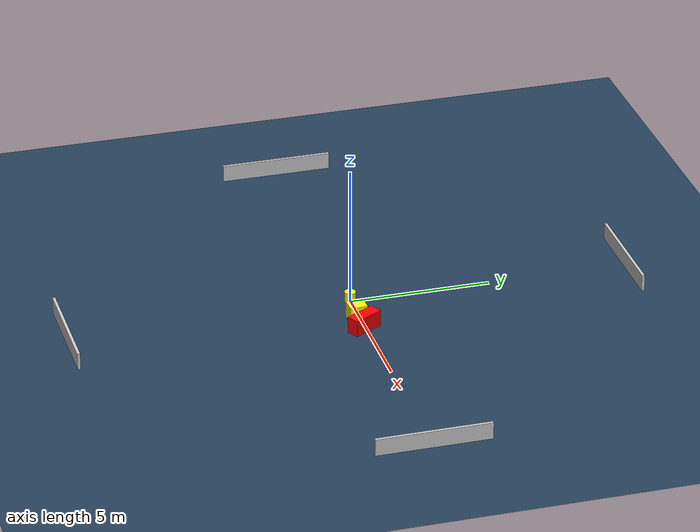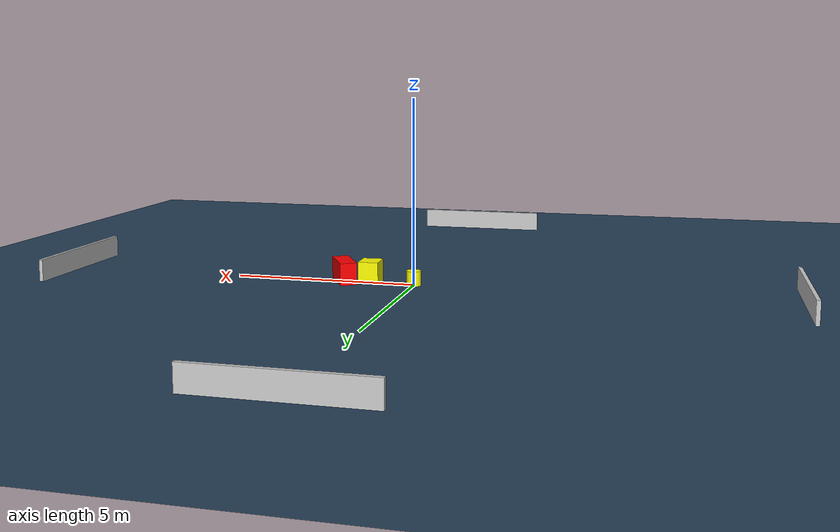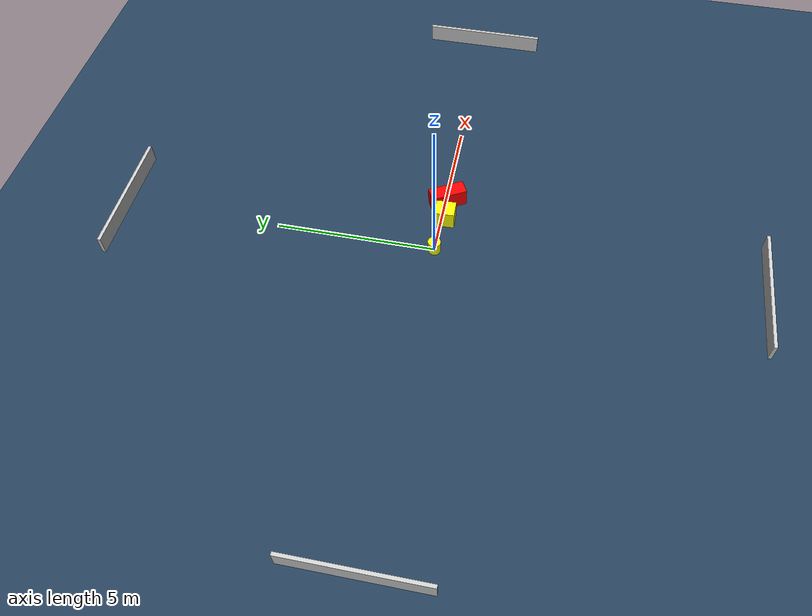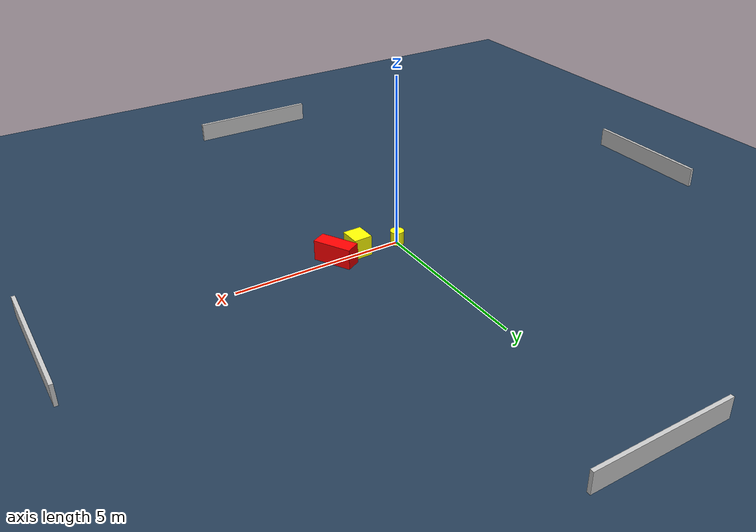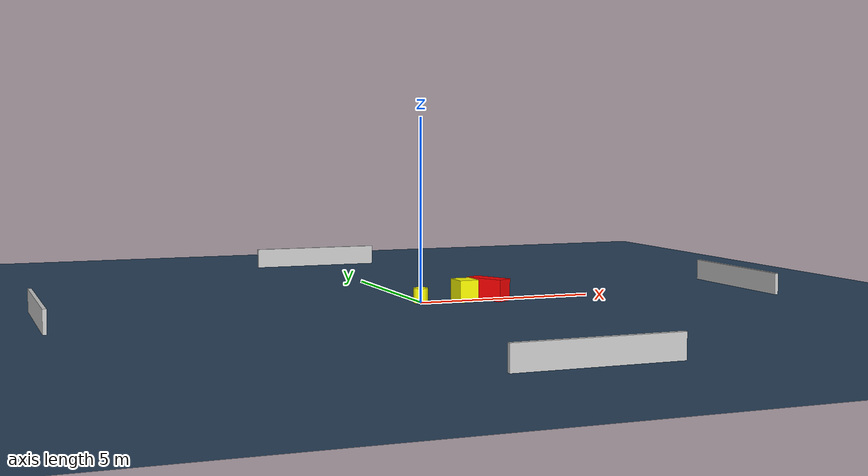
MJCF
<?xml version="1.0" ?>
<mujoco model="generated_environment">
  <option timestep="0.01" integrator="RK4" cone="elliptic"/>
  <default>
    <geom density="1"/>
  </default>
  <asset>
    <texture builtin="gradient" height="3072" name="skybox" rgb1="0.3 0.5 0.7" rgb2="0 0 0" type="skybox" width="512"/>
    <texture builtin="checker" height="300" name="groundplane" rgb1="0.2 0.3 0.4" rgb2="0.1 0.2 0.3" type="2d" width="300"/>
    <material name="groundplane" reflectance="0.2" texrepeat="5 5" texture="groundplane"/>
  </asset>
  <worldbody>
    <light dir="0 0 -1" directional="true" pos="0 0 1.5"/>
    <geom condim="3" friction="0.5 0.005 0.001" material="groundplane" name="floor" pos="0 0 0" size="0 0 0.05" type="plane"/>
    <body name="walls">
      <geom name="wall_1" condim="4" pos="-10.0 0.0 0.3" rgba="0.800000011920929 0.800000011920929 0.800000011920929 1.0" size="0.05 2.0 0.3" type="box"/>
      <geom name="wall_2" condim="4" pos="10.0 0.0 0.3" rgba="0.800000011920929 0.800000011920929 0.800000011920929 1.0" size="0.05 2.0 0.3" type="box"/>
      <geom name="wall_3" condim="4" pos="0.0 -10.0 0.3" rgba="0.800000011920929 0.800000011920929 0.800000011920929 1.0" size="2.0 0.05 0.3" type="box"/>
      <geom name="wall_4" condim="4" pos="0.0 10.0 0.3" rgba="0.800000011920929 0.800000011920929 0.800000011920929 1.0" size="2.0 0.05 0.3" type="box"/>
    </body>
    <body name="robot">
      <joint name="joint_x" type="slide" pos="0 0 0" axis="1 0 0"/>
      <joint name="joint_y" type="slide" pos="0 0 0" axis="0 1 0"/>
      <geom name="robot" type="cylinder" pos="0.0 0.0 0.2" size="0.2 0.2 0.0" mass="5.0" friction="1.0 0.005 0.0001" condim="4" rgba="1.0 1.0 0.0 1.0"/>
    </body>
    <body name="obstacle_1_movable">
      <geom name="obstacle_1_movable" condim="4" pos="1.2355883328126718 -0.1154372957215017 0.3" euler="0 0 272.00685785770463" friction="0.0 0.005 0.001" rgba="1.0 1.0 0.0 1.0" size="0.3095031517384244 0.27270745867798984 0.3" type="box" mass="0.1"/>
      <joint type="free"/>
    </body>
    <body name="obstacle_2_static">
      <geom name="obstacle_2_static" condim="4" pos="1.966335933971064 -0.05372905862693358 0.3" euler="0 0 208.87702689740294" friction="0.0 0.005 0.001" rgba="1.0 0.0 0.0 1.0" size="0.22689320291271264 0.5681298189840511 0.3" type="box"/>
    </body>
  </worldbody>
  <actuator>
    <motor name="actuator_x" joint="joint_x" gear="1" ctrlrange="-1 1"/>
    <motor name="actuator_y" joint="joint_y" gear="1" ctrlrange="-1 1"/>
  </actuator>
</mujoco>
